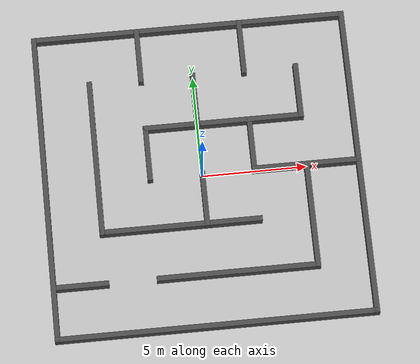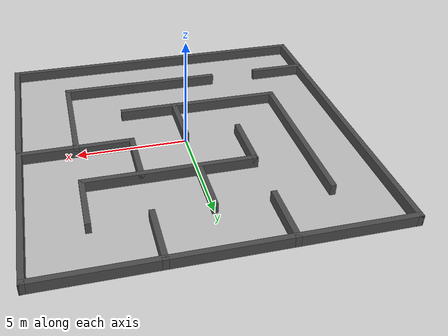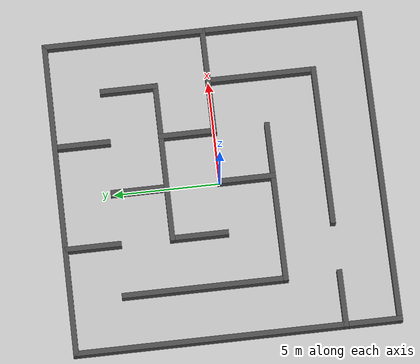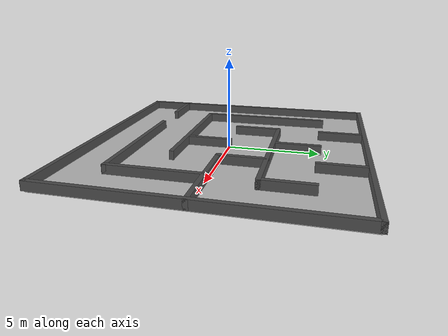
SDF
<?xml version="1.0"?>
<sdf version="1.6">
  <world name="robot_maze">

    <!-- ================= PHYSICS ================= -->
    <physics name="default_physics" type="ignored">
      <max_step_size>0.001</max_step_size>
      <real_time_factor>1.0</real_time_factor>
    </physics>

    <!-- ================= GAZEBO SYSTEMS ================= -->
    <plugin filename="gz-sim-physics-system"
            name="gz::sim::systems::Physics"/>

    <plugin filename="gz-sim-user-commands-system"
            name="gz::sim::systems::UserCommands"/>

    <plugin filename="gz-sim-scene-broadcaster-system"
            name="gz::sim::systems::SceneBroadcaster"/>

    <plugin filename="gz-sim-sensors-system"
        name="gz::sim::systems::Sensors">
       <render_engine>ogre2</render_engine>
    </plugin>

    <!-- ================= LIGHTING ================= -->
    <light name="sun" type="directional">
      <pose>0 0 5 0 0 0</pose>
      <cast_shadows>true</cast_shadows>
      <diffuse>0.8 0.8 0.8 1</diffuse>
      <specular>0.2 0.2 0.2 1</specular>
      <direction>-0.5 0.1 -0.9</direction>
    </light>

    <!-- ================= GROUND PLANE ================= -->
    <!-- Centered maze spans x=-7.5..7.5 and y=-7.5..7.5 -->
    <model name="ground_plane">
      <static>true</static>
      <pose>0 0 -0.05 0 0 0</pose>

      <link name="link">
        <collision name="collision">
          <geometry>
            <box>
              <size>15 15 0.1</size>
            </box>
          </geometry>
        </collision>

        <visual name="visual">
          <geometry>
            <box>
              <size>15 15 0.1</size>
            </box>
          </geometry>
          <material>
            <ambient>0.75 0.75 0.75 1</ambient>
            <diffuse>0.75 0.75 0.75 1</diffuse>
          </material>
        </visual>
      </link>
    </model>

    <!-- ================= MAZE WALLS ================= -->
    <model name="maze">
      <static>true</static>
      <!-- Center the original 0..15 m wall coordinates on the world origin -->
      <pose>-7.5 -7.5 0 0 0 0</pose>

      <!-- All walls: height 0.5 m, thickness 0.25 m (scaled proportionally) -->

      <!-- OUTER TOP WALL -->
      <link name="outer_top">
        <pose>7.5 15 0.25 0 0 0</pose>
        <collision name="collision">
          <geometry>
            <box><size>15.25 0.25 0.5</size></box>
          </geometry>
        </collision>
        <visual name="visual">
          <geometry>
            <box><size>15.25 0.25 0.5</size></box>
          </geometry>
          <material>
            <ambient>0.2 0.2 0.2 1</ambient>
            <diffuse>0.3 0.3 0.3 1</diffuse>
          </material>
        </visual>
      </link>

      <!-- OUTER BOTTOM WALL -->
      <link name="outer_bottom">
        <pose>7.5 0 0.25 0 0 0</pose>
        <collision name="collision">
          <geometry>
            <box><size>15.25 0.25 0.5</size></box>
          </geometry>
        </collision>
        <visual name="visual">
          <geometry>
            <box><size>15.25 0.25 0.5</size></box>
          </geometry>
          <material>
            <ambient>0.2 0.2 0.2 1</ambient>
            <diffuse>0.3 0.3 0.3 1</diffuse>
          </material>
        </visual>
      </link>

      <!-- OUTER LEFT WALL -->
      <link name="outer_left">
        <pose>0 7.5 0.25 0 0 0</pose>
        <collision name="collision">
          <geometry>
            <box><size>0.25 15.25 0.5</size></box>
          </geometry>
        </collision>
        <visual name="visual">
          <geometry>
            <box><size>0.25 15.25 0.5</size></box>
          </geometry>
          <material>
            <ambient>0.2 0.2 0.2 1</ambient>
            <diffuse>0.3 0.3 0.3 1</diffuse>
          </material>
        </visual>
      </link>

      <!-- OUTER RIGHT WALL -->
      <link name="outer_right">
        <pose>15 7.5 0.25 0 0 0</pose>
        <collision name="collision">
          <geometry>
            <box><size>0.25 15.25 0.5</size></box>
          </geometry>
        </collision>
        <visual name="visual">
          <geometry>
            <box><size>0.25 15.25 0.5</size></box>
          </geometry>
          <material>
            <ambient>0.2 0.2 0.2 1</ambient>
            <diffuse>0.3 0.3 0.3 1</diffuse>
          </material>
        </visual>
      </link>

      <!-- ========== INTERIOR VERTICAL WALLS ========== -->

      <link name="v1">
        <pose>5 13.75 0.25 0 0 0</pose>
        <collision name="collision">
          <geometry><box><size>0.25 2.75 0.5</size></box></geometry>
        </collision>
        <visual name="visual">
          <geometry><box><size>0.25 2.75 0.5</size></box></geometry>
          <material><ambient>0.2 0.2 0.2 1</ambient><diffuse>0.3 0.3 0.3 1</diffuse></material>
        </visual>
      </link>

      <link name="v2">
        <pose>10 13.75 0.25 0 0 0</pose>
        <collision name="collision">
          <geometry><box><size>0.25 2.75 0.5</size></box></geometry>
        </collision>
        <visual name="visual">
          <geometry><box><size>0.25 2.75 0.5</size></box></geometry>
          <material><ambient>0.2 0.2 0.2 1</ambient><diffuse>0.3 0.3 0.3 1</diffuse></material>
        </visual>
      </link>

      <link name="v3">
        <pose>2.5 8.75 0.25 0 0 0</pose>
        <collision name="collision">
          <geometry><box><size>0.25 7.75 0.5</size></box></geometry>
        </collision>
        <visual name="visual">
          <geometry><box><size>0.25 7.75 0.5</size></box></geometry>
          <material><ambient>0.2 0.2 0.2 1</ambient><diffuse>0.3 0.3 0.3 1</diffuse></material>
        </visual>
      </link>

      <link name="v4">
        <pose>7.5 11.25 0.25 0 0 0</pose>
        <collision name="collision">
          <geometry><box><size>0.25 2.75 0.5</size></box></geometry>
        </collision>
        <visual name="visual">
          <geometry><box><size>0.25 2.75 0.5</size></box></geometry>
          <material><ambient>0.2 0.2 0.2 1</ambient><diffuse>0.3 0.3 0.3 1</diffuse></material>
        </visual>
      </link>

      <link name="v5">
        <pose>12.5 11.25 0.25 0 0 0</pose>
        <collision name="collision">
          <geometry><box><size>0.25 2.75 0.5</size></box></geometry>
        </collision>
        <visual name="visual">
          <geometry><box><size>0.25 2.75 0.5</size></box></geometry>
          <material><ambient>0.2 0.2 0.2 1</ambient><diffuse>0.3 0.3 0.3 1</diffuse></material>
        </visual>
      </link>

      <link name="v6">
        <pose>5 8.75 0.25 0 0 0</pose>
        <collision name="collision">
          <geometry><box><size>0.25 2.75 0.5</size></box></geometry>
        </collision>
        <visual name="visual">
          <geometry><box><size>0.25 2.75 0.5</size></box></geometry>
          <material><ambient>0.2 0.2 0.2 1</ambient><diffuse>0.3 0.3 0.3 1</diffuse></material>
        </visual>
      </link>

      <link name="v7">
        <pose>10 8.75 0.25 0 0 0</pose>
        <collision name="collision">
          <geometry><box><size>0.25 2.75 0.5</size></box></geometry>
        </collision>
        <visual name="visual">
          <geometry><box><size>0.25 2.75 0.5</size></box></geometry>
          <material><ambient>0.2 0.2 0.2 1</ambient><diffuse>0.3 0.3 0.3 1</diffuse></material>
        </visual>
      </link>

      <link name="v8">
        <pose>7.5 6.25 0.25 0 0 0</pose>
        <collision name="collision">
          <geometry><box><size>0.25 2.75 0.5</size></box></geometry>
        </collision>
        <visual name="visual">
          <geometry><box><size>0.25 2.75 0.5</size></box></geometry>
          <material><ambient>0.2 0.2 0.2 1</ambient><diffuse>0.3 0.3 0.3 1</diffuse></material>
        </visual>
      </link>

      <link name="v9">
        <pose>12.5 5 0.25 0 0 0</pose>
        <collision name="collision">
          <geometry><box><size>0.25 5.25 0.5</size></box></geometry>
        </collision>
        <visual name="visual">
          <geometry><box><size>0.25 5.25 0.5</size></box></geometry>
          <material><ambient>0.2 0.2 0.2 1</ambient><diffuse>0.3 0.3 0.3 1</diffuse></material>
        </visual>
      </link>

      <!-- ========== INTERIOR HORIZONTAL WALLS ========== -->

      <link name="h1">
        <pose>8.75 10 0.25 0 0 0</pose>
        <collision name="collision">
          <geometry><box><size>7.75 0.25 0.5</size></box></geometry>
        </collision>
        <visual name="visual">
          <geometry><box><size>7.75 0.25 0.5</size></box></geometry>
          <material><ambient>0.2 0.2 0.2 1</ambient><diffuse>0.3 0.3 0.3 1</diffuse></material>
        </visual>
      </link>

      <link name="h2">
        <pose>12.5 7.5 0.25 0 0 0</pose>
        <collision name="collision">
          <geometry><box><size>5.25 0.25 0.5</size></box></geometry>
        </collision>
        <visual name="visual">
          <geometry><box><size>5.25 0.25 0.5</size></box></geometry>
          <material><ambient>0.2 0.2 0.2 1</ambient><diffuse>0.3 0.3 0.3 1</diffuse></material>
        </visual>
      </link>

      <link name="h3">
        <pose>6.25 5 0.25 0 0 0</pose>
        <collision name="collision">
          <geometry><box><size>7.75 0.25 0.5</size></box></geometry>
        </collision>
        <visual name="visual">
          <geometry><box><size>7.75 0.25 0.5</size></box></geometry>
          <material><ambient>0.2 0.2 0.2 1</ambient><diffuse>0.3 0.3 0.3 1</diffuse></material>
        </visual>
      </link>

      <link name="h4">
        <pose>1.25 2.5 0.25 0 0 0</pose>
        <collision name="collision">
          <geometry><box><size>2.75 0.25 0.5</size></box></geometry>
        </collision>
        <visual name="visual">
          <geometry><box><size>2.75 0.25 0.5</size></box></geometry>
          <material><ambient>0.2 0.2 0.2 1</ambient><diffuse>0.3 0.3 0.3 1</diffuse></material>
        </visual>
      </link>

      <link name="h5">
        <pose>8.75 2.5 0.25 0 0 0</pose>
        <collision name="collision">
          <geometry><box><size>7.75 0.25 0.5</size></box></geometry>
        </collision>
        <visual name="visual">
          <geometry><box><size>7.75 0.25 0.5</size></box></geometry>
          <material><ambient>0.2 0.2 0.2 1</ambient><diffuse>0.3 0.3 0.3 1</diffuse></material>
        </visual>
      </link>

    </model>

    <!-- ================= CAMERA VIEW ================= -->
    <gui>
      <camera name="top_view">
        <pose>0 0 25 0 1.5708 0</pose>
      </camera>
    </gui>

  </world>
</sdf>
